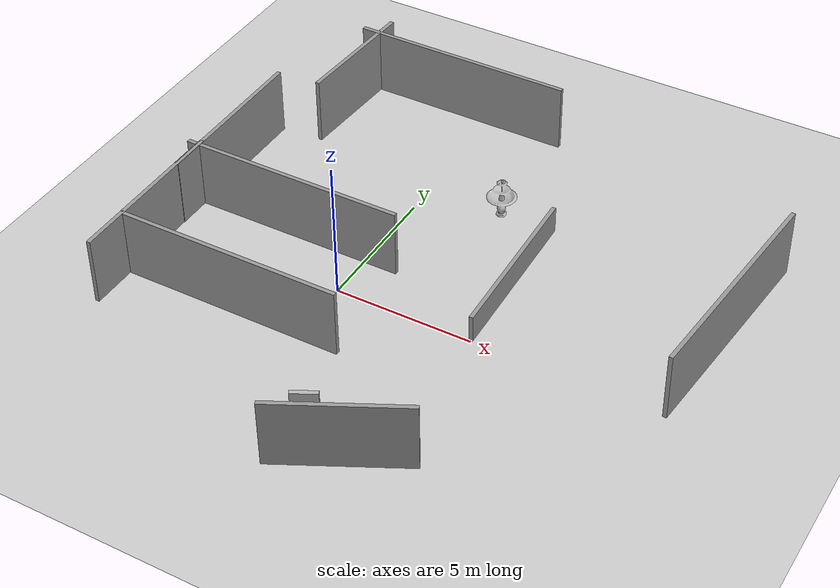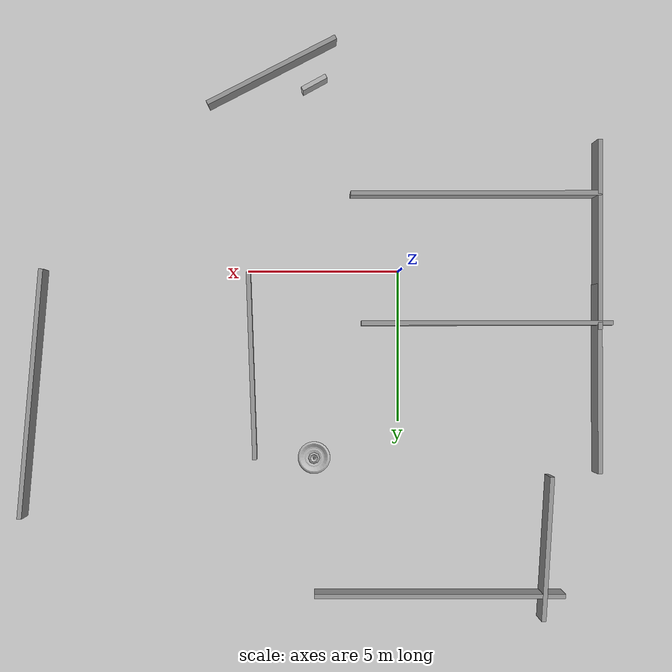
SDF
<sdf version="1.6">
 <world name="default">
  <plugin filename="gz-sim-physics-system" name="gz::sim::systems::Physics"/>
  <plugin filename="gz-sim-sensors-system" name="gz::sim::systems::Sensors">
   <render_engine>ogre2</render_engine>
  </plugin>
  <plugin filename="gz-sim-imu-system" name="gz::sim::systems::Imu">
   <render_engine>ogre2</render_engine>
  </plugin>
  <plugin filename="gz-sim-scene-broadcaster-system" name="gz::sim::systems::SceneBroadcaster"/>
  <plugin filename="gz-sim-user-commands-system" name="gz::sim::systems::UserCommands"/>
  <light name="sun" type="directional">
   <cast_shadows>0</cast_shadows>
   <pose>0 0 10 0 -0 0</pose>
   <diffuse>1 1 1 1</diffuse>
   <specular>0.2 0.2 0.2 1</specular>
   <attenuation>
    <range>1000</range>
    <constant>0.9</constant>
    <linear>0.01</linear>
    <quadratic>0.001</quadratic>
   </attenuation>
   <direction>-0.5 -0.5 -1</direction>
  </light>
  <physics name="default_physics" default="0" type="ode">
   <max_step_size>0.001</max_step_size>
   <real_time_factor>1</real_time_factor>
   <real_time_update_rate>1000</real_time_update_rate>
  </physics>
  <scene><ambient>1 1 1 1</ambient><background>1 1 1 1</background><shadows>0</shadows></scene>
  <spherical_coordinates>
   <surface_model>EARTH_WGS84</surface_model>
   <latitude_deg>43.5655</latitude_deg>
   <longitude_deg>1.4740</longitude_deg>
   <elevation>150</elevation>
   <heading_deg>180</heading_deg>
  </spherical_coordinates>
  <gravity>0 0 -9.8</gravity>
  <magnetic_field>6e-06 2.3e-05 -4.2e-05</magnetic_field>
  <atmosphere type="adiabatic"/>
  <audio><device>default</device></audio>
  <model name="ground_plane">
   <static>true</static>
   <link name="link">
    <collision name="collision">
     <geometry><plane><normal>0 0 1</normal><size>300 300</size></plane></geometry>
     <surface><friction><ode><mu>100</mu><mu2>50</mu2></ode></friction></surface>
    </collision>
    <visual name="visual">
     <cast_shadows>false</cast_shadows>
     <geometry><plane><normal>0 0 1</normal><size>300 300</size></plane></geometry>
     <material>
      <script><uri>file://media/materials/scripts/gazebo.material</uri><name>Gazebo/Grey</name></script>
     </material>
    </visual>
    <velocity_decay><linear>0</linear><angular>0</angular></velocity_decay>
    <inertial>
     <mass>1</mass>
     <inertia><ixx>1</ixx><ixy>0</ixy><ixz>0</ixz><iyy>1</iyy><iyz>0</iyz><izz>1</izz></inertia>
    </inertial>
   </link>
  </model>
  <model name="fountain">
   <static>true</static>
   <link name="link">
    <collision name="collision">
     <geometry><mesh><scale>0.01 0.01 0.01</scale><uri>model://fountain/meshes/fountain.dae</uri></mesh></geometry>
    </collision>
    <visual name="visual">
     <geometry>
      <mesh>
       <scale>0.59999999999999998 0.59999999999999998 0.59999999999999998</scale>
       <uri>model://fountain/meshes/fountain.dae</uri>
      </mesh>
     </geometry>
    </visual>
    <inertial>
     <mass>1</mass>
     <inertia><ixx>1</ixx><ixy>0</ixy><ixz>0</ixz><iyy>1</iyy><iyz>0</iyz><izz>1</izz></inertia>
    </inertial>
   </link>
   <pose>2.8091545009613035 6.2073990631103522 0 0 0 1.5699999999999998</pose>
  </model>
  <model name="door">
   <link name="link_0">
    <visual name="visual">
     <pose>2.7999999999999998 -6.2000000000000002 1 0 0 0.5</pose>
     <geometry><box><size>0.90000000000000002 0.14999999999999999 2</size></box></geometry>
     <material>
      <script>
       <uri>model://door/materials/scripts</uri>
       <uri>model://door/materials/textures</uri>
       <name>door</name>
      </script>
     </material>
     <cast_shadows>false</cast_shadows>
    </visual>
    <collision name="collision">
     <pose>0 0 1 0 0 0</pose>
     <geometry><box><size>0.01 0.01 1</size></box></geometry>
    </collision>
    <inertial>
     <mass>1</mass>
     <inertia><ixx>1</ixx><ixy>0</ixy><ixz>0</ixz><iyy>1</iyy><iyz>0</iyz><izz>1</izz></inertia>
    </inertial>
   </link>
   <static>true</static>
  </model>
  <model name="Untitled_0">
   <pose>-2.8796999454498291 3.2506458759307861 0 0 0 0</pose>
   <link name="Wall_0">
    <collision name="Wall_0_Collision">
     <geometry><box><size>8.25 0.14999999999999999 2.5</size></box></geometry>
     <pose>0 0 1.25 0 0 0</pose>
    </collision>
    <visual name="Wall_0_Visual">
     <pose>0 0 1.25 0 0 0</pose>
     <geometry><box><size>8.25 0.14999999999999999 2.5</size></box></geometry>
     <material>
      <script><uri>file://media/materials/scripts/gazebo.material</uri><name>Gazebo/Grey</name></script>
      <ambient>1 1 1 1</ambient>
     </material>
     <meta><layer>0</layer></meta>
    </visual>
    <pose>0 -1.5125 0 0 0 0</pose>
    <inertial>
     <mass>1</mass>
     <inertia><ixx>1</ixx><ixy>0</ixy><ixz>0</ixz><iyy>1</iyy><iyz>0</iyz><izz>1</izz></inertia>
    </inertial>
   </link>
   <static>true</static>
  </model>
  <model name="Untitled_00">
   <pose>-1.3200000524520874 12.220547676086426 0 0 0 0</pose>
   <link name="Wall_0">
    <collision name="Wall_0_Collision">
     <geometry><box><size>8.25 0.14999999999999999 2.5</size></box></geometry>
     <pose>0 0 1.25 0 0 0</pose>
    </collision>
    <visual name="Wall_0_Visual">
     <pose>0 0 1.25 0 0 0</pose>
     <geometry><box><size>8.25 0.14999999999999999 2.5</size></box></geometry>
     <material>
      <script><uri>file://media/materials/scripts/gazebo.material</uri><name>Gazebo/Grey</name></script>
      <ambient>1 1 1 1</ambient>
     </material>
     <meta><layer>0</layer></meta>
    </visual>
    <pose>0 -1.5125 0 0 0 0</pose>
    <inertial>
     <mass>1</mass>
     <inertia><ixx>1</ixx><ixy>0</ixy><ixz>0</ixz><iyy>1</iyy><iyz>0</iyz><izz>1</izz></inertia>
    </inertial>
   </link>
   <static>true</static>
  </model>
  <model name="Untitled_0000">
   <pose>10.625800 4.189880 0 0 0 1.484820</pose>
   <link name="Wall_0">
    <collision name="Wall_0_Collision">
     <geometry><box><size>8.25 0.14999999999999999 2.5</size></box></geometry>
     <pose>0 0 1.25 0 0 0</pose>
    </collision>
    <visual name="Wall_0_Visual">
     <pose>0 0 1.25 0 0 0</pose>
     <geometry><box><size>8.25 0.14999999999999999 2.5</size></box></geometry>
     <material>
      <script><uri>file://media/materials/scripts/gazebo.material</uri><name>Gazebo/Grey</name></script>
      <ambient>1 1 1 1</ambient>
     </material>
     <meta><layer>0</layer></meta>
    </visual>
    <pose>0 -1.5125 0 0 0 0</pose>
    <inertial>
     <mass>1</mass>
     <inertia><ixx>1</ixx><ixy>0</ixy><ixz>0</ixz><iyy>1</iyy><iyz>0</iyz><izz>1</izz></inertia>
    </inertial>
   </link>
   <static>true</static>
  </model>
  <model name="Untitled_000000">
   <pose>3.379710 3.097170 -0.730834 0 0 1.605100</pose>
   <link name="Wall_0">
    <collision name="Wall_0_Collision">
     <geometry><box><size>6.25 0.14999999999999999 1.0</size></box></geometry>
     <pose>0 0 1.25 0 0 0</pose>
    </collision>
    <visual name="Wall_0_Visual">
     <pose>0 0 1.25 0 0 0</pose>
     <geometry><box><size>6.25 0.14999999999999999 1.0</size></box></geometry>
     <material>
      <script><uri>file://media/materials/scripts/gazebo.material</uri><name>Gazebo/Grey</name></script>
      <ambient>1 1 1 1</ambient>
     </material>
     <meta><layer>0</layer></meta>
    </visual>
    <pose>0 -1.5125 0 0 0 0</pose>
    <inertial>
     <mass>1</mass>
     <inertia><ixx>1</ixx><ixy>0</ixy><ixz>0</ixz><iyy>1</iyy><iyz>0</iyz><izz>1</izz></inertia>
    </inertial>
   </link>
   <static>true</static>
  </model>
  <model name="Untitled_1">
   <pose>3.7195546627044678 -5.6231269836425781 0 0 0 0.47367498599227292</pose>
   <link name="Wall_2">
    <collision name="Wall_2_Collision">
     <geometry><box><size>4.75 0.14999999999999999 2.5</size></box></geometry>
     <pose>0 0 1.25 0 0 0</pose>
    </collision>
    <visual name="Wall_2_Visual">
     <pose>0 0 1.25 0 0 0</pose>
     <geometry><box><size>4.75 0.14999999999999999 2.5</size></box></geometry>
     <material>
      <script><uri>file://media/materials/scripts/gazebo.material</uri><name>Gazebo/Grey</name></script>
      <ambient>1 1 1 1</ambient>
     </material>
     <meta><layer>0</layer></meta>
    </visual>
    <pose>0 -1.0674999999999999 0 0 0 0</pose>
    <inertial>
     <mass>1</mass>
     <inertia><ixx>1</ixx><ixy>0</ixy><ixz>0</ixz><iyy>1</iyy><iyz>0</iyz><izz>1</izz></inertia>
    </inertial>
   </link>
   <static>true</static>
  </model>
  <model name="Untitled_11">
   <pose>-5.9299999999999997 9.2300000000000004 0 0 0 1.5100000000000002</pose>
   <link name="Wall_2">
    <collision name="Wall_2_Collision">
     <geometry><box><size>4.75 0.14999999999999999 2.5</size></box></geometry>
     <pose>0 0 1.25 0 0 0</pose>
    </collision>
    <visual name="Wall_2_Visual">
     <pose>0 0 1.25 0 0 0</pose>
     <geometry><box><size>4.75 0.14999999999999999 2.5</size></box></geometry>
     <material>
      <script><uri>file://media/materials/scripts/gazebo.material</uri><name>Gazebo/Grey</name></script>
      <ambient>1 1 1 1</ambient>
     </material>
     <meta><layer>0</layer></meta>
    </visual>
    <pose>0 -1.0674999999999999 0 0 0 0</pose>
    <inertial>
     <mass>1</mass>
     <inertia><ixx>1</ixx><ixy>0</ixy><ixz>0</ixz><iyy>1</iyy><iyz>0</iyz><izz>1</izz></inertia>
    </inertial>
   </link>
   <static>true</static>
  </model>
  <model name="Untitled_2">
   <pose>-5.4974799156188965 3.5681540966033944 0 0 0 1.4432899320127035e-15</pose>
   <link name="Wall_4">
    <collision name="Wall_4_Collision">
     <geometry><box><size>6.25 0.14999999999999999 2.5</size></box></geometry>
     <pose>0 0 1.25 0 0 0</pose>
    </collision>
    <visual name="Wall_4_Visual">
     <pose>0 0 1.25 0 0 0</pose>
     <geometry><box><size>6.25 0.14999999999999999 2.5</size></box></geometry>
     <material>
      <script><uri>file://media/materials/scripts/gazebo.material</uri><name>Gazebo/Grey</name></script>
      <ambient>1 1 1 1</ambient>
     </material>
     <meta><layer>0</layer></meta>
    </visual>
    <pose>-1.0774999999999999 0 0 0 0 1.5708</pose>
    <inertial>
     <mass>1</mass>
     <inertia><ixx>1</ixx><ixy>0</ixy><ixz>0</ixz><iyy>1</iyy><iyz>0</iyz><izz>1</izz></inertia>
    </inertial>
   </link>
   <static>true</static>
  </model>
  <model name="Untitled_0_clone">
   <pose>-2.5243799686431885 -1.0236749649047854 0 0 0 0</pose>
   <link name="Wall_0">
    <collision name="Wall_0_Collision">
     <geometry><box><size>8.25 0.14999999999999999 2.5</size></box></geometry>
     <pose>0 0 1.25 0 0 0</pose>
    </collision>
    <visual name="Wall_0_Visual">
     <pose>0 0 1.25 0 0 0</pose>
     <geometry><box><size>8.25 0.14999999999999999 2.5</size></box></geometry>
     <material>
      <script><uri>file://media/materials/scripts/gazebo.material</uri><name>Gazebo/Grey</name></script>
      <ambient>1 1 1 1</ambient>
     </material>
     <meta><layer>0</layer></meta>
    </visual>
    <pose>0 -1.5125 0 0 0 0</pose>
    <inertial>
     <mass>1</mass>
     <inertia><ixx>1</ixx><ixy>0</ixy><ixz>0</ixz><iyy>1</iyy><iyz>0</iyz><izz>1</izz></inertia>
    </inertial>
   </link>
   <static>true</static>
  </model>
  <model name="Untitled_2_clone">
   <pose>-5.5136198997497559 -1.1721292734146112 0 0 0 1.4432899320127035e-15</pose>
   <link name="Wall_4">
    <collision name="Wall_4_Collision">
     <geometry><box><size>6.25 0.14999999999999999 2.5</size></box></geometry>
     <pose>0 0 1.25 0 0 0</pose>
    </collision>
    <visual name="Wall_4_Visual">
     <pose>0 0 1.25 0 0 0</pose>
     <geometry><box><size>6.25 0.14999999999999999 2.5</size></box></geometry>
     <material>
      <script><uri>file://media/materials/scripts/gazebo.material</uri><name>Gazebo/Grey</name></script>
      <ambient>1 1 1 1</ambient>
     </material>
     <meta><layer>0</layer></meta>
    </visual>
    <pose>-1.0774999999999999 0 0 0 0 1.5708</pose>
    <inertial>
     <mass>1</mass>
     <inertia><ixx>1</ixx><ixy>0</ixy><ixz>0</ixz><iyy>1</iyy><iyz>0</iyz><izz>1</izz></inertia>
    </inertial>
   </link>
   <static>true</static>
  </model>
 </world>
</sdf>
